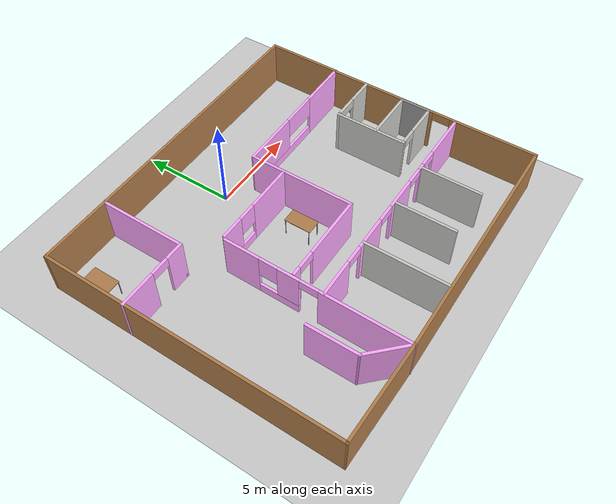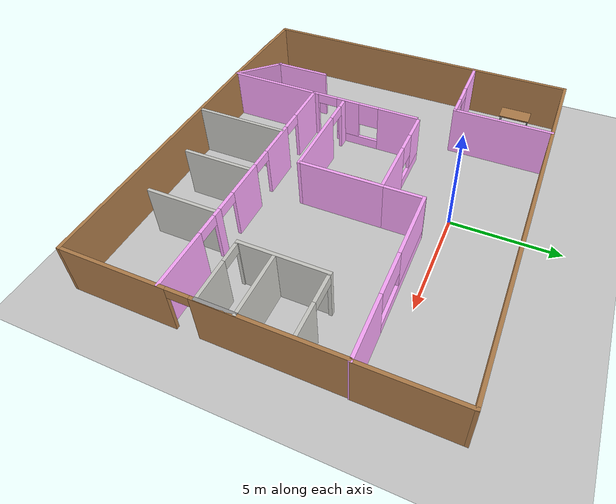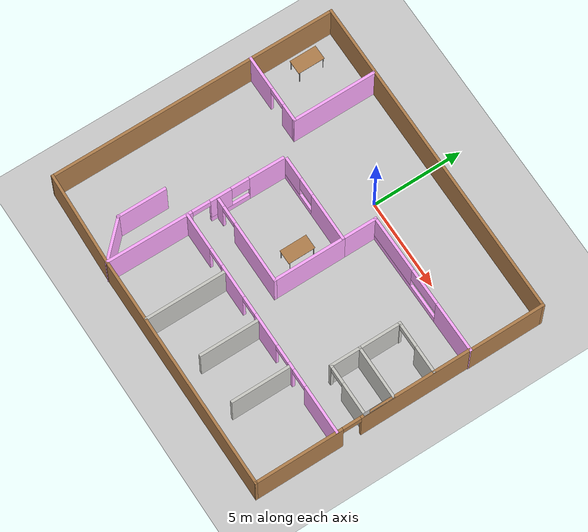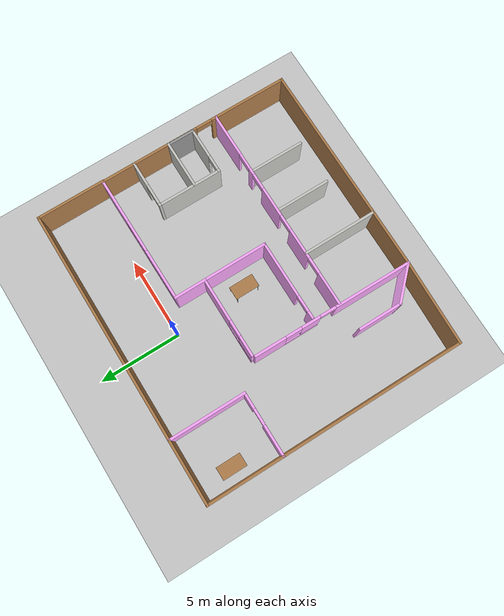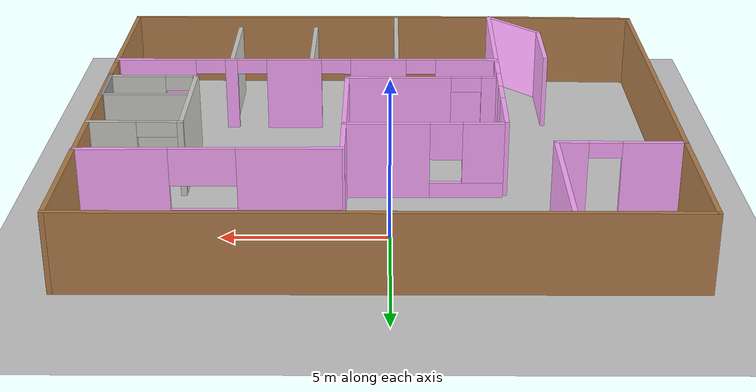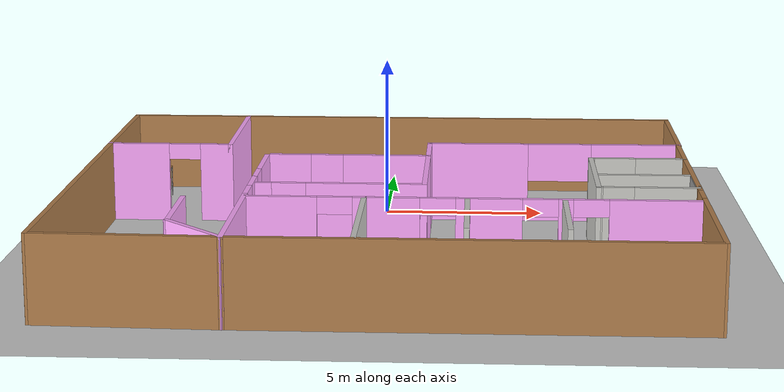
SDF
<sdf version="1.6">
 <world name="default">
  <model name="ground_plane">
   <static>1</static>
   <link name="link">
    <collision name="collision">
     <geometry><plane><normal>0 0 1</normal><size>100 100</size></plane></geometry>
     <surface>
      <contact><collide_bitmask>65535</collide_bitmask></contact>
      <friction><ode><mu>100</mu><mu2>50</mu2></ode></friction>
     </surface>
    </collision>
    <visual name="visual">
     <cast_shadows>0</cast_shadows>
     <geometry><plane><normal>0 0 1</normal><size>100 100</size></plane></geometry>
     <material>
      <script><uri>file://media/materials/scripts/gazebo.material</uri><name>Gazebo/Grey</name></script>
     </material>
    </visual>
   </link>
  </model>
  <model name="Building">
   <pose>0.26771 -4.76126 0 0 -0 0</pose>
   <link name="Wall_0">
    <pose>-3.89491 -3.07088 0 0 0 -1.57824</pose>
    <visual name="Wall_0_Visual_0">
     <pose>-3.9947 0 1.25 0 -0 0</pose>
     <geometry><box><size>1.99092 0.15 2.5</size></box></geometry>
     <material>
      <script><uri>file://media/materials/scripts/gazebo.material</uri><name>Gazebo/Grey</name></script>
      <ambient>1 0.666667 1 1</ambient>
     </material>
     <meta><layer>0</layer></meta>
    </visual>
    <collision name="Wall_0_Collision_0">
     <geometry><box><size>1.99092 0.15 2.5</size></box></geometry>
     <pose>-3.9947 0 1.25 0 -0 0</pose>
    </collision>
    <visual name="Wall_0_Visual_1">
     <pose>2.58886 0 1.25 0 -0 0</pose>
     <geometry><box><size>4.80261 0.15 2.5</size></box></geometry>
     <material>
      <script><uri>file://media/materials/scripts/gazebo.material</uri><name>Gazebo/Grey</name></script>
      <ambient>1 0.666667 1 1</ambient>
     </material>
     <meta><layer>0</layer></meta>
    </visual>
    <collision name="Wall_0_Collision_1">
     <geometry><box><size>4.80261 0.15 2.5</size></box></geometry>
     <pose>2.58886 0 1.25 0 -0 0</pose>
    </collision>
    <visual name="Wall_0_Visual_2">
     <pose>-1.90584 0 0.25 0 -0 0</pose>
     <geometry><box><size>2.18679 0.15 0.5</size></box></geometry>
     <material>
      <script><uri>file://media/materials/scripts/gazebo.material</uri><name>Gazebo/Grey</name></script>
      <ambient>1 0.666667 1 1</ambient>
     </material>
     <meta><layer>0</layer></meta>
    </visual>
    <collision name="Wall_0_Collision_2">
     <geometry><box><size>2.18679 0.15 0.5</size></box></geometry>
     <pose>-1.90584 0 0.25 0 -0 0</pose>
    </collision>
    <visual name="Wall_0_Visual_3">
     <pose>-1.40584 0 1.5 0 -0 0</pose>
     <geometry><box><size>1.18679 0.15 2</size></box></geometry>
     <material>
      <script><uri>file://media/materials/scripts/gazebo.material</uri><name>Gazebo/Grey</name></script>
      <ambient>1 0.666667 1 1</ambient>
     </material>
     <meta><layer>0</layer></meta>
    </visual>
    <collision name="Wall_0_Collision_3">
     <geometry><box><size>1.18679 0.15 2</size></box></geometry>
     <pose>-1.40584 0 1.5 0 -0 0</pose>
    </collision>
    <visual name="Wall_0_Visual_4">
     <pose>-2.49924 0 1.9 0 -0 0</pose>
     <geometry><box><size>1 0.15 1.2</size></box></geometry>
     <material>
      <script><uri>file://media/materials/scripts/gazebo.material</uri><name>Gazebo/Grey</name></script>
      <ambient>1 0.666667 1 1</ambient>
     </material>
     <meta><layer>0</layer></meta>
    </visual>
    <collision name="Wall_0_Collision_4">
     <geometry><box><size>1 0.15 1.2</size></box></geometry>
     <pose>-2.49924 0 1.9 0 -0 0</pose>
    </collision>
    <visual name="Wall_0_Visual_5">
     <pose>-0.312448 0 2.25 0 -0 0</pose>
     <geometry><box><size>1 0.15 0.5</size></box></geometry>
     <material>
      <script><uri>file://media/materials/scripts/gazebo.material</uri><name>Gazebo/Grey</name></script>
      <ambient>1 0.666667 1 1</ambient>
     </material>
     <meta><layer>0</layer></meta>
    </visual>
    <collision name="Wall_0_Collision_5">
     <geometry><box><size>1 0.15 0.5</size></box></geometry>
     <pose>-0.312448 0 2.25 0 -0 0</pose>
    </collision>
   </link>
   <link name="Wall_1">
    <collision name="Wall_1_Collision">
     <geometry><box><size>13.0918 0.15 2.5</size></box></geometry>
     <pose>0 0 1.25 0 -0 0</pose>
    </collision>
    <visual name="Wall_1_Visual">
     <pose>0 0 1.25 0 -0 0</pose>
     <geometry><box><size>13.0918 0.15 2.5</size></box></geometry>
     <material>
      <script><uri>file://media/materials/scripts/gazebo.material</uri><name>Gazebo/Wood</name></script>
      <ambient>1 1 1 1</ambient>
     </material>
     <meta><layer>0</layer></meta>
    </visual>
    <pose>2.5394 -7.9859 0 0 -0 0</pose>
   </link>
   <link name="Wall_10">
    <pose>2.57243 -3.52127 0 0 -0 0</pose>
    <visual name="Wall_10_Visual_0">
     <pose>-5.45325 0 1.25 0 -0 0</pose>
     <geometry><box><size>2.0935 0.15 2.5</size></box></geometry>
     <material>
      <script><uri>file://media/materials/scripts/gazebo.material</uri><name>Gazebo/Grey</name></script>
      <ambient>1 0.666667 1 1</ambient>
     </material>
     <meta><layer>0</layer></meta>
    </visual>
    <collision name="Wall_10_Collision_0">
     <geometry><box><size>2.0935 0.15 2.5</size></box></geometry>
     <pose>-5.45325 0 1.25 0 -0 0</pose>
    </collision>
    <visual name="Wall_10_Visual_1">
     <pose>-2.45836 0 1.25 0 -0 0</pose>
     <geometry><box><size>1.89627 0.15 2.5</size></box></geometry>
     <material>
      <script><uri>file://media/materials/scripts/gazebo.material</uri><name>Gazebo/Grey</name></script>
      <ambient>1 0.666667 1 1</ambient>
     </material>
     <meta><layer>0</layer></meta>
    </visual>
    <collision name="Wall_10_Collision_1">
     <geometry><box><size>1.89627 0.15 2.5</size></box></geometry>
     <pose>-2.45836 0 1.25 0 -0 0</pose>
    </collision>
    <visual name="Wall_10_Visual_2">
     <pose>0.424691 0 1.25 0 -0 0</pose>
     <geometry><box><size>1.86983 0.15 2.5</size></box></geometry>
     <material>
      <script><uri>file://media/materials/scripts/gazebo.material</uri><name>Gazebo/Grey</name></script>
      <ambient>1 0.666667 1 1</ambient>
     </material>
     <meta><layer>0</layer></meta>
    </visual>
    <collision name="Wall_10_Collision_2">
     <geometry><box><size>1.86983 0.15 2.5</size></box></geometry>
     <pose>0.424691 0 1.25 0 -0 0</pose>
    </collision>
    <visual name="Wall_10_Visual_3">
     <pose>2.56714 0 1.25 0 -0 0</pose>
     <geometry><box><size>0.415075 0.15 2.5</size></box></geometry>
     <material>
      <script><uri>file://media/materials/scripts/gazebo.material</uri><name>Gazebo/Grey</name></script>
      <ambient>1 0.666667 1 1</ambient>
     </material>
     <meta><layer>0</layer></meta>
    </visual>
    <collision name="Wall_10_Collision_3">
     <geometry><box><size>0.415075 0.15 2.5</size></box></geometry>
     <pose>2.56714 0 1.25 0 -0 0</pose>
    </collision>
    <visual name="Wall_10_Visual_4">
     <pose>5.13734 0 1.25 0 -0 0</pose>
     <geometry><box><size>2.72532 0.15 2.5</size></box></geometry>
     <material>
      <script><uri>file://media/materials/scripts/gazebo.material</uri><name>Gazebo/Grey</name></script>
      <ambient>1 0.666667 1 1</ambient>
     </material>
     <meta><layer>0</layer></meta>
    </visual>
    <collision name="Wall_10_Collision_4">
     <geometry><box><size>2.72532 0.15 2.5</size></box></geometry>
     <pose>5.13734 0 1.25 0 -0 0</pose>
    </collision>
    <visual name="Wall_10_Visual_5">
     <pose>-3.9065 0 2.25 0 -0 0</pose>
     <geometry><box><size>1 0.15 0.5</size></box></geometry>
     <material>
      <script><uri>file://media/materials/scripts/gazebo.material</uri><name>Gazebo/Grey</name></script>
      <ambient>1 0.666667 1 1</ambient>
     </material>
     <meta><layer>0</layer></meta>
    </visual>
    <collision name="Wall_10_Collision_5">
     <geometry><box><size>1 0.15 0.5</size></box></geometry>
     <pose>-3.9065 0 2.25 0 -0 0</pose>
    </collision>
    <visual name="Wall_10_Visual_6">
     <pose>-1.01022 0 2.25 0 -0 0</pose>
     <geometry><box><size>1 0.15 0.5</size></box></geometry>
     <material>
      <script><uri>file://media/materials/scripts/gazebo.material</uri><name>Gazebo/Grey</name></script>
      <ambient>1 0.666667 1 1</ambient>
     </material>
     <meta><layer>0</layer></meta>
    </visual>
    <collision name="Wall_10_Collision_6">
     <geometry><box><size>1 0.15 0.5</size></box></geometry>
     <pose>-1.01022 0 2.25 0 -0 0</pose>
    </collision>
    <visual name="Wall_10_Visual_7">
     <pose>1.8596 0 2.25 0 -0 0</pose>
     <geometry><box><size>1 0.15 0.5</size></box></geometry>
     <material>
      <script><uri>file://media/materials/scripts/gazebo.material</uri><name>Gazebo/Grey</name></script>
      <ambient>1 0.666667 1 1</ambient>
     </material>
     <meta><layer>0</layer></meta>
    </visual>
    <collision name="Wall_10_Collision_7">
     <geometry><box><size>1 0.15 0.5</size></box></geometry>
     <pose>1.8596 0 2.25 0 -0 0</pose>
    </collision>
    <visual name="Wall_10_Visual_8">
     <pose>3.27468 0 2.25 0 -0 0</pose>
     <geometry><box><size>1 0.15 0.5</size></box></geometry>
     <material>
      <script><uri>file://media/materials/scripts/gazebo.material</uri><name>Gazebo/Grey</name></script>
      <ambient>1 0.666667 1 1</ambient>
     </material>
     <meta><layer>0</layer></meta>
    </visual>
    <collision name="Wall_10_Collision_8">
     <geometry><box><size>1 0.15 0.5</size></box></geometry>
     <pose>3.27468 0 2.25 0 -0 0</pose>
    </collision>
   </link>
   <link name="Wall_12">
    <pose>7.56891 1.8886 0 0 -0 3.14159</pose>
    <visual name="Wall_12_Visual_0">
     <pose>-0.720538 0 1.25 0 -0 0</pose>
     <geometry><box><size>1.55892 0.15 2.5</size></box></geometry>
     <material>
      <script><uri>file://media/materials/scripts/gazebo.material</uri><name>Gazebo/CeilingTiled</name></script>
      <ambient>0.666667 0.666667 1 1</ambient>
     </material>
     <meta><layer>0</layer></meta>
    </visual>
    <collision name="Wall_12_Collision_0">
     <geometry><box><size>1.55892 0.15 2.5</size></box></geometry>
     <pose>-0.720538 0 1.25 0 -0 0</pose>
    </collision>
    <visual name="Wall_12_Visual_1">
     <pose>1.40446 0 1.25 0 -0 0</pose>
     <geometry><box><size>0.191076 0.15 2.5</size></box></geometry>
     <material>
      <script><uri>file://media/materials/scripts/gazebo.material</uri><name>Gazebo/CeilingTiled</name></script>
      <ambient>0.666667 0.666667 1 1</ambient>
     </material>
     <meta><layer>0</layer></meta>
    </visual>
    <collision name="Wall_12_Collision_1">
     <geometry><box><size>0.191076 0.15 2.5</size></box></geometry>
     <pose>1.40446 0 1.25 0 -0 0</pose>
    </collision>
    <visual name="Wall_12_Visual_2">
     <pose>0.683924 0 2.25 0 -0 0</pose>
     <geometry><box><size>1.25 0.15 0.5</size></box></geometry>
     <material>
      <script><uri>file://media/materials/scripts/gazebo.material</uri><name>Gazebo/CeilingTiled</name></script>
      <ambient>0.666667 0.666667 1 1</ambient>
     </material>
     <meta><layer>0</layer></meta>
    </visual>
    <collision name="Wall_12_Collision_2">
     <geometry><box><size>1.25 0.15 0.5</size></box></geometry>
     <pose>0.683924 0 2.25 0 -0 0</pose>
    </collision>
   </link>
   <link name="Wall_15">
    <collision name="Wall_15_Collision">
     <geometry><box><size>4 0.15 2.5</size></box></geometry>
     <pose>0 0 1.25 0 -0 0</pose>
    </collision>
    <visual name="Wall_15_Visual">
     <pose>0 0 1.25 0 -0 0</pose>
     <geometry><box><size>4 0.15 2.5</size></box></geometry>
     <material>
      <script><uri>file://media/materials/scripts/gazebo.material</uri><name>Gazebo/CeilingTiled</name></script>
      <ambient>0.666667 0.666667 1 1</ambient>
     </material>
     <meta><layer>0</layer></meta>
    </visual>
    <pose>6.14391 -0.036403 0 0 0 -1.5708</pose>
   </link>
   <link name="Wall_16">
    <pose>7.56891 -1.9614 0 0 -0 0</pose>
    <visual name="Wall_16_Visual_0">
     <pose>-1.40292 0 1.25 0 -0 0</pose>
     <geometry><box><size>0.194152 0.15 2.5</size></box></geometry>
     <material>
      <script><uri>file://media/materials/scripts/gazebo.material</uri><name>Gazebo/CeilingTiled</name></script>
      <ambient>0.666667 0.666667 1 1</ambient>
     </material>
     <meta><layer>0</layer></meta>
    </visual>
    <collision name="Wall_16_Collision_0">
     <geometry><box><size>0.194152 0.15 2.5</size></box></geometry>
     <pose>-1.40292 0 1.25 0 -0 0</pose>
    </collision>
    <visual name="Wall_16_Visual_1">
     <pose>0.547076 0 1.25 0 -0 0</pose>
     <geometry><box><size>1.90585 0.15 2.5</size></box></geometry>
     <material>
      <script><uri>file://media/materials/scripts/gazebo.material</uri><name>Gazebo/CeilingTiled</name></script>
      <ambient>0.666667 0.666667 1 1</ambient>
     </material>
     <meta><layer>0</layer></meta>
    </visual>
    <collision name="Wall_16_Collision_1">
     <geometry><box><size>1.90585 0.15 2.5</size></box></geometry>
     <pose>0.547076 0 1.25 0 -0 0</pose>
    </collision>
    <visual name="Wall_16_Visual_2">
     <pose>-0.855848 0 2.25 0 -0 0</pose>
     <geometry><box><size>0.9 0.15 0.5</size></box></geometry>
     <material>
      <script><uri>file://media/materials/scripts/gazebo.material</uri><name>Gazebo/CeilingTiled</name></script>
      <ambient>0.666667 0.666667 1 1</ambient>
     </material>
     <meta><layer>0</layer></meta>
    </visual>
    <collision name="Wall_16_Collision_2">
     <geometry><box><size>0.9 0.15 0.5</size></box></geometry>
     <pose>-0.855848 0 2.25 0 -0 0</pose>
    </collision>
   </link>
   <link name="Wall_17">
    <collision name="Wall_17_Collision">
     <geometry><box><size>1.75 0.15 2.5</size></box></geometry>
     <pose>0 0 1.25 0 -0 0</pose>
    </collision>
    <visual name="Wall_17_Visual">
     <pose>0 0 1.25 0 -0 0</pose>
     <geometry><box><size>1.75 0.15 2.5</size></box></geometry>
     <material>
      <script><uri>file://media/materials/scripts/gazebo.material</uri><name>Gazebo/Grey</name></script>
      <ambient>1 1 1 1</ambient>
     </material>
     <meta><layer>0</layer></meta>
    </visual>
    <pose>8.99391 -1.1614 0 0 -0 1.5708</pose>
   </link>
   <link name="Wall_18">
    <collision name="Wall_18_Collision">
     <geometry><box><size>3 0.15 2.5</size></box></geometry>
     <pose>0 0 1.25 0 -0 0</pose>
    </collision>
    <visual name="Wall_18_Visual">
     <pose>0 0 1.25 0 -0 0</pose>
     <geometry><box><size>3 0.15 2.5</size></box></geometry>
     <material>
      <script><uri>file://media/materials/scripts/gazebo.material</uri><name>Gazebo/CeilingTiled</name></script>
      <ambient>0.666667 0.666667 1 1</ambient>
     </material>
     <meta><layer>0</layer></meta>
    </visual>
    <pose>7.56891 -0.361403 0 0 -0 3.14159</pose>
   </link>
   <link name="Wall_2">
    <pose>9.01627 -2.06506 0 0 -0 1.56978</pose>
    <visual name="Wall_2_Visual_0">
     <pose>-3.568 0 1.25 0 -0 0</pose>
     <geometry><box><size>4.85569 0.15 2.5</size></box></geometry>
     <material>
      <script><uri>file://media/materials/scripts/gazebo.material</uri><name>Gazebo/Wood</name></script>
      <ambient>1 1 1 1</ambient>
     </material>
     <meta><layer>0</layer></meta>
    </visual>
    <collision name="Wall_2_Collision_0">
     <geometry><box><size>4.85569 0.15 2.5</size></box></geometry>
     <pose>-3.568 0 1.25 0 -0 0</pose>
    </collision>
    <visual name="Wall_2_Visual_1">
     <pose>2.92785 0 1.25 0 -0 0</pose>
     <geometry><box><size>6.136 0.15 2.5</size></box></geometry>
     <material>
      <script><uri>file://media/materials/scripts/gazebo.material</uri><name>Gazebo/Wood</name></script>
      <ambient>1 1 1 1</ambient>
     </material>
     <meta><layer>0</layer></meta>
    </visual>
    <collision name="Wall_2_Collision_1">
     <geometry><box><size>6.136 0.15 2.5</size></box></geometry>
     <pose>2.92785 0 1.25 0 -0 0</pose>
    </collision>
    <visual name="Wall_2_Visual_2">
     <pose>-0.640156 0 2.25 0 -0 0</pose>
     <geometry><box><size>1 0.15 0.5</size></box></geometry>
     <material>
      <script><uri>file://media/materials/scripts/gazebo.material</uri><name>Gazebo/Wood</name></script>
      <ambient>1 1 1 1</ambient>
     </material>
     <meta><layer>0</layer></meta>
    </visual>
    <collision name="Wall_2_Collision_2">
     <geometry><box><size>1 0.15 0.5</size></box></geometry>
     <pose>-0.640156 0 2.25 0 -0 0</pose>
    </collision>
   </link>
   <link name="Wall_21">
    <collision name="Wall_21_Collision">
     <geometry><box><size>4.5 0.15 2.5</size></box></geometry>
     <pose>0 0 1.25 0 -0 0</pose>
    </collision>
    <visual name="Wall_21_Visual">
     <pose>0 0 1.25 0 -0 0</pose>
     <geometry><box><size>4.5 0.15 2.5</size></box></geometry>
     <material>
      <script><uri>file://media/materials/scripts/gazebo.material</uri><name>Gazebo/CeilingTiled</name></script>
      <ambient>1 0.666667 1 1</ambient>
     </material>
     <meta><layer>0</layer></meta>
    </visual>
    <pose>-0.507784 -5.74646 0 0 0 -1.5708</pose>
   </link>
   <link name="Wall_23">
    <collision name="Wall_23_Collision">
     <geometry><box><size>3.25 0.15 2.5</size></box></geometry>
     <pose>0 0 1.25 0 -0 0</pose>
    </collision>
    <visual name="Wall_23_Visual">
     <pose>0 0 1.25 0 -0 0</pose>
     <geometry><box><size>3.25 0.15 2.5</size></box></geometry>
     <material>
      <script><uri>file://media/materials/scripts/gazebo.material</uri><name>Gazebo/CeilingTiled</name></script>
      <ambient>1 0.666667 1 1</ambient>
     </material>
     <meta><layer>0</layer></meta>
    </visual>
    <pose>2.39271 -5.21989 0 0 0 -1.5708</pose>
   </link>
   <link name="Wall_25">
    <collision name="Wall_25_Collision">
     <geometry><box><size>3.25 0.15 2.5</size></box></geometry>
     <pose>0 0 1.25 0 -0 0</pose>
    </collision>
    <visual name="Wall_25_Visual">
     <pose>0 0 1.25 0 -0 0</pose>
     <geometry><box><size>3.25 0.15 2.5</size></box></geometry>
     <material>
      <script><uri>file://media/materials/scripts/gazebo.material</uri><name>Gazebo/CeilingTiled</name></script>
      <ambient>1 0.666667 1 1</ambient>
     </material>
     <meta><layer>0</layer></meta>
    </visual>
    <pose>5.11344 -5.21592 0 0 0 -1.5708</pose>
   </link>
   <link name="Wall_27">
    <collision name="Wall_27_Collision">
     <geometry><box><size>4.25 0.15 2.5</size></box></geometry>
     <pose>0 0 1.25 0 -0 0</pose>
    </collision>
    <visual name="Wall_27_Visual">
     <pose>0 0 1.25 0 -0 0</pose>
     <geometry><box><size>4.25 0.15 2.5</size></box></geometry>
     <material>
      <script><uri>file://media/materials/scripts/gazebo.material</uri><name>Gazebo/Wood</name></script>
      <ambient>1 1 1 1</ambient>
     </material>
     <meta><layer>0</layer></meta>
    </visual>
    <pose>9.05284 5.96697 0 0 -0 1.5708</pose>
   </link>
   <link name="Wall_28">
    <collision name="Wall_28_Collision">
     <geometry><box><size>18.25 0.15 2.5</size></box></geometry>
     <pose>0 0 1.25 0 -0 0</pose>
    </collision>
    <visual name="Wall_28_Visual">
     <pose>0 0 1.25 0 -0 0</pose>
     <geometry><box><size>18.25 0.15 2.5</size></box></geometry>
     <material>
      <script><uri>file://media/materials/scripts/gazebo.material</uri><name>Gazebo/Wood</name></script>
      <ambient>1 1 1 1</ambient>
     </material>
     <meta><layer>0</layer></meta>
    </visual>
    <pose>0.002842 8.01697 0 0 -0 3.14159</pose>
   </link>
   <link name="Wall_3">
    <pose>5.09725 3.88056 0 0 0 -3.13239</pose>
    <visual name="Wall_3_Visual_0">
     <pose>-2.60316 0 1.25 0 -0 0</pose>
     <geometry><box><size>2.85486 0.15 2.5</size></box></geometry>
     <material>
      <script><uri>file://media/materials/scripts/gazebo.material</uri><name>Gazebo/Grey</name></script>
      <ambient>1 0.666667 1 1</ambient>
     </material>
     <meta><layer>0</layer></meta>
    </visual>
    <collision name="Wall_3_Collision_0">
     <geometry><box><size>2.85486 0.15 2.5</size></box></geometry>
     <pose>-2.60316 0 1.25 0 -0 0</pose>
    </collision>
    <visual name="Wall_3_Visual_1">
     <pose>1.42743 0 0.25 0 -0 0</pose>
     <geometry><box><size>5.20633 0.15 0.5</size></box></geometry>
     <material>
      <script><uri>file://media/materials/scripts/gazebo.material</uri><name>Gazebo/Grey</name></script>
      <ambient>1 0.666667 1 1</ambient>
     </material>
     <meta><layer>0</layer></meta>
    </visual>
    <collision name="Wall_3_Collision_1">
     <geometry><box><size>5.20633 0.15 0.5</size></box></geometry>
     <pose>1.42743 0 0.25 0 -0 0</pose>
    </collision>
    <visual name="Wall_3_Visual_2">
     <pose>2.42743 0 1.5 0 -0 0</pose>
     <geometry><box><size>3.20633 0.15 2</size></box></geometry>
     <material>
      <script><uri>file://media/materials/scripts/gazebo.material</uri><name>Gazebo/Grey</name></script>
      <ambient>1 0.666667 1 1</ambient>
     </material>
     <meta><layer>0</layer></meta>
    </visual>
    <collision name="Wall_3_Collision_2">
     <geometry><box><size>3.20633 0.15 2</size></box></geometry>
     <pose>2.42743 0 1.5 0 -0 0</pose>
    </collision>
    <visual name="Wall_3_Visual_3">
     <pose>-0.175731 0 1.9 0 -0 0</pose>
     <geometry><box><size>2 0.15 1.2</size></box></geometry>
     <material>
      <script><uri>file://media/materials/scripts/gazebo.material</uri><name>Gazebo/Grey</name></script>
      <ambient>1 0.666667 1 1</ambient>
     </material>
     <meta><layer>0</layer></meta>
    </visual>
    <collision name="Wall_3_Collision_3">
     <geometry><box><size>2 0.15 1.2</size></box></geometry>
     <pose>-0.175731 0 1.9 0 -0 0</pose>
    </collision>
   </link>
   <link name="Wall_32">
    <collision name="Wall_32_Collision">
     <geometry><box><size>16 0.15 2.5</size></box></geometry>
     <pose>0 0 1.25 0 -0 0</pose>
    </collision>
    <visual name="Wall_32_Visual">
     <pose>0 0 1.25 0 -0 0</pose>
     <geometry><box><size>16 0.15 2.5</size></box></geometry>
     <material>
      <script><uri>file://media/materials/scripts/gazebo.material</uri><name>Gazebo/Wood</name></script>
      <ambient>1 1 1 1</ambient>
     </material>
     <meta><layer>0</layer></meta>
    </visual>
    <pose>-9.04716 0.091965 0 0 0 -1.5708</pose>
   </link>
   <link name="Wall_33">
    <collision name="Wall_33_Collision">
     <geometry><box><size>5.26795 0.15 2.5</size></box></geometry>
     <pose>0 0 1.25 0 -0 0</pose>
    </collision>
    <visual name="Wall_33_Visual">
     <pose>0 0 1.25 0 -0 0</pose>
     <geometry><box><size>5.26795 0.15 2.5</size></box></geometry>
     <material>
      <script><uri>file://media/materials/scripts/gazebo.material</uri><name>Gazebo/Wood</name></script>
      <ambient>1 1 1 1</ambient>
     </material>
     <meta><layer>0</layer></meta>
    </visual>
    <pose>-6.48932 -7.90947 0 0 0 -0.029873</pose>
   </link>
   <link name="Wall_34">
    <collision name="Wall_34_Collision">
     <geometry><box><size>2.5 0.15 2.5</size></box></geometry>
     <pose>0 0 1.25 0 -0 0</pose>
    </collision>
    <visual name="Wall_34_Visual">
     <pose>0 0 1.25 0 -0 0</pose>
     <geometry><box><size>2.5 0.15 2.5</size></box></geometry>
     <material>
      <script><uri>file://media/materials/scripts/gazebo.material</uri><name>Gazebo/Grey</name></script>
      <ambient>1 0.666667 1 1</ambient>
     </material>
     <meta><layer>0</layer></meta>
    </visual>
    <pose>-4.76234 -7.15505 0 0 -0 2.35619</pose>
   </link>
   <link name="Wall_35">
    <collision name="Wall_35_Collision">
     <geometry><box><size>2.75 0.15 2.5</size></box></geometry>
     <pose>0 0 1.25 0 -0 0</pose>
    </collision>
    <visual name="Wall_35_Visual">
     <pose>0 0 1.25 0 -0 0</pose>
     <geometry><box><size>2.75 0.15 2.5</size></box></geometry>
     <material>
      <script><uri>file://media/materials/scripts/gazebo.material</uri><name>Gazebo/Grey</name></script>
      <ambient>1 0.666667 1 1</ambient>
     </material>
     <meta><layer>0</layer></meta>
    </visual>
    <pose>-5.59319 -5.0242 0 0 -0 1.5708</pose>
   </link>
   <link name="Wall_37">
    <pose>-7.12837 3.3843 0 0 -0 0</pose>
    <visual name="Wall_37_Visual_0">
     <pose>-1.01948 0 1.25 0 -0 0</pose>
     <geometry><box><size>1.96104 0.15 2.5</size></box></geometry>
     <material>
      <script><uri>file://media/materials/scripts/gazebo.material</uri><name>Gazebo/Grey</name></script>
      <ambient>1 0.666667 1 1</ambient>
     </material>
     <meta><layer>0</layer></meta>
    </visual>
    <collision name="Wall_37_Collision_0">
     <geometry><box><size>1.96104 0.15 2.5</size></box></geometry>
     <pose>-1.01948 0 1.25 0 -0 0</pose>
    </collision>
    <visual name="Wall_37_Visual_1">
     <pose>1.48052 0 1.25 0 -0 0</pose>
     <geometry><box><size>1.03896 0.15 2.5</size></box></geometry>
     <material>
      <script><uri>file://media/materials/scripts/gazebo.material</uri><name>Gazebo/Grey</name></script>
      <ambient>1 0.666667 1 1</ambient>
     </material>
     <meta><layer>0</layer></meta>
    </visual>
    <collision name="Wall_37_Collision_1">
     <geometry><box><size>1.03896 0.15 2.5</size></box></geometry>
     <pose>1.48052 0 1.25 0 -0 0</pose>
    </collision>
    <visual name="Wall_37_Visual_2">
     <pose>0.461038 0 2.25 0 -0 0</pose>
     <geometry><box><size>1 0.15 0.5</size></box></geometry>
     <material>
      <script><uri>file://media/materials/scripts/gazebo.material</uri><name>Gazebo/Grey</name></script>
      <ambient>1 0.666667 1 1</ambient>
     </material>
     <meta><layer>0</layer></meta>
    </visual>
    <collision name="Wall_37_Collision_2">
     <geometry><box><size>1 0.15 0.5</size></box></geometry>
     <pose>0.461038 0 2.25 0 -0 0</pose>
    </collision>
   </link>
   <link name="Wall_38">
    <collision name="Wall_38_Collision">
     <geometry><box><size>4.75 0.15 2.5</size></box></geometry>
     <pose>0 0 1.25 0 -0 0</pose>
    </collision>
    <visual name="Wall_38_Visual">
     <pose>0 0 1.25 0 -0 0</pose>
     <geometry><box><size>4.75 0.15 2.5</size></box></geometry>
     <material>
      <script><uri>file://media/materials/scripts/gazebo.material</uri><name>Gazebo/Grey</name></script>
      <ambient>1 0.666667 1 1</ambient>
     </material>
     <meta><layer>0</layer></meta>
    </visual>
    <pose>-5.20337 5.6843 0 0 -0 1.5708</pose>
   </link>
   <link name="Wall_4">
    <collision name="Wall_4_Collision">
     <geometry><box><size>2 0.15 2.5</size></box></geometry>
     <pose>0 0 1.25 0 -0 0</pose>
    </collision>
    <visual name="Wall_4_Visual">
     <pose>0 0 1.25 0 -0 0</pose>
     <geometry><box><size>2 0.15 2.5</size></box></geometry>
     <material>
      <script><uri>file://media/materials/scripts/gazebo.material</uri><name>Gazebo/Grey</name></script>
      <ambient>1 0.666667 1 1</ambient>
     </material>
     <meta><layer>0</layer></meta>
    </visual>
    <pose>1.14166 2.91915 0 0 0 -1.5708</pose>
   </link>
   <link name="Wall_5">
    <pose>-1.28334 1.99415 0 0 -0 3.14159</pose>
    <visual name="Wall_5_Visual_0">
     <pose>-1.1425 0 1.25 0 -0 0</pose>
     <geometry><box><size>2.715 0.15 2.5</size></box></geometry>
     <material>
      <script><uri>file://media/materials/scripts/gazebo.material</uri><name>Gazebo/Grey</name></script>
      <ambient>1 0.666667 1 1</ambient>
     </material>
     <meta><layer>0</layer></meta>
    </visual>
    <collision name="Wall_5_Collision_0">
     <geometry><box><size>2.715 0.15 2.5</size></box></geometry>
     <pose>-1.1425 0 1.25 0 -0 0</pose>
    </collision>
    <visual name="Wall_5_Visual_1">
     <pose>1.3575 0 0.25 0 -0 0</pose>
     <geometry><box><size>2.285 0.15 0.5</size></box></geometry>
     <material>
      <script><uri>file://media/materials/scripts/gazebo.material</uri><name>Gazebo/Grey</name></script>
      <ambient>1 0.666667 1 1</ambient>
     </material>
     <meta><layer>0</layer></meta>
    </visual>
    <collision name="Wall_5_Collision_1">
     <geometry><box><size>2.285 0.15 0.5</size></box></geometry>
     <pose>1.3575 0 0.25 0 -0 0</pose>
    </collision>
    <visual name="Wall_5_Visual_2">
     <pose>1.8575 0 1.5 0 -0 0</pose>
     <geometry><box><size>1.285 0.15 2</size></box></geometry>
     <material>
      <script><uri>file://media/materials/scripts/gazebo.material</uri><name>Gazebo/Grey</name></script>
      <ambient>1 0.666667 1 1</ambient>
     </material>
     <meta><layer>0</layer></meta>
    </visual>
    <collision name="Wall_5_Collision_2">
     <geometry><box><size>1.285 0.15 2</size></box></geometry>
     <pose>1.8575 0 1.5 0 -0 0</pose>
    </collision>
    <visual name="Wall_5_Visual_3">
     <pose>0.715001 0 1.9 0 -0 0</pose>
     <geometry><box><size>1 0.15 1.2</size></box></geometry>
     <material>
      <script><uri>file://media/materials/scripts/gazebo.material</uri><name>Gazebo/Grey</name></script>
      <ambient>1 0.666667 1 1</ambient>
     </material>
     <meta><layer>0</layer></meta>
    </visual>
    <collision name="Wall_5_Collision_3">
     <geometry><box><size>1 0.15 1.2</size></box></geometry>
     <pose>0.715001 0 1.9 0 -0 0</pose>
    </collision>
   </link>
   <link name="Wall_7">
    <collision name="Wall_7_Collision">
     <geometry><box><size>4 0.15 2.5</size></box></geometry>
     <pose>0 0 1.25 0 -0 0</pose>
    </collision>
    <visual name="Wall_7_Visual">
     <pose>0 0 1.25 0 -0 0</pose>
     <geometry><box><size>4 0.15 2.5</size></box></geometry>
     <material>
      <script><uri>file://media/materials/scripts/gazebo.material</uri><name>Gazebo/Grey</name></script>
      <ambient>1 0.666667 1 1</ambient>
     </material>
     <meta><layer>0</layer></meta>
    </visual>
    <pose>1.14166 0.069149 0 0 0 -1.5708</pose>
   </link>
   <link name="Wall_8">
    <pose>-1.28334 -1.85585 0 0 -0 3.14159</pose>
    <visual name="Wall_8_Visual_0">
     <pose>-0.743815 0 1.25 0 -0 0</pose>
     <geometry><box><size>3.51237 0.15 2.5</size></box></geometry>
     <material>
      <script><uri>file://media/materials/scripts/gazebo.material</uri><name>Gazebo/Grey</name></script>
      <ambient>1 0.666667 1 1</ambient>
     </material>
     <meta><layer>0</layer></meta>
    </visual>
    <collision name="Wall_8_Collision_0">
     <geometry><box><size>3.51237 0.15 2.5</size></box></geometry>
     <pose>-0.743815 0 1.25 0 -0 0</pose>
    </collision>
    <visual name="Wall_8_Visual_1">
     <pose>2.25618 0 1.25 0 -0 0</pose>
     <geometry><box><size>0.48763 0.15 2.5</size></box></geometry>
     <material>
      <script><uri>file://media/materials/scripts/gazebo.material</uri><name>Gazebo/Grey</name></script>
      <ambient>1 0.666667 1 1</ambient>
     </material>
     <meta><layer>0</layer></meta>
    </visual>
    <collision name="Wall_8_Collision_1">
     <geometry><box><size>0.48763 0.15 2.5</size></box></geometry>
     <pose>2.25618 0 1.25 0 -0 0</pose>
    </collision>
    <visual name="Wall_8_Visual_2">
     <pose>1.51237 0 2.25 0 -0 0</pose>
     <geometry><box><size>1 0.15 0.5</size></box></geometry>
     <material>
      <script><uri>file://media/materials/scripts/gazebo.material</uri><name>Gazebo/Grey</name></script>
      <ambient>1 0.666667 1 1</ambient>
     </material>
     <meta><layer>0</layer></meta>
    </visual>
    <collision name="Wall_8_Collision_2">
     <geometry><box><size>1 0.15 0.5</size></box></geometry>
     <pose>1.51237 0 2.25 0 -0 0</pose>
    </collision>
   </link>
   <static>1</static>
  </model>
  <model name="table_clone_1">
   <static>1</static>
   <link name="link">
    <collision name="surface">
     <pose>0 0 1 0 -0 0</pose>
     <geometry><box><size>1.5 0.8 0.03</size></box></geometry>
     <surface><friction><ode><mu>0.6</mu><mu2>0.6</mu2></ode></friction></surface>
    </collision>
    <visual name="visual1">
     <pose>0 0 1 0 -0 0</pose>
     <geometry><box><size>1.5 0.8 0.03</size></box></geometry>
     <material>
      <script><uri>file://media/materials/scripts/gazebo.material</uri><name>Gazebo/Wood</name></script>
     </material>
    </visual>
    <collision name="front_left_leg">
     <pose>0.68 0.38 0.5 0 -0 0</pose>
     <geometry><cylinder><radius>0.02</radius><length>1</length></cylinder></geometry>
    </collision>
    <visual name="front_left_leg">
     <pose>0.68 0.38 0.5 0 -0 0</pose>
     <geometry><cylinder><radius>0.02</radius><length>1</length></cylinder></geometry>
     <material>
      <script><uri>file://media/materials/scripts/gazebo.material</uri><name>Gazebo/Grey</name></script>
     </material>
    </visual>
    <collision name="front_right_leg">
     <pose>0.68 -0.38 0.5 0 -0 0</pose>
     <geometry><cylinder><radius>0.02</radius><length>1</length></cylinder></geometry>
    </collision>
    <visual name="front_right_leg">
     <pose>0.68 -0.38 0.5 0 -0 0</pose>
     <geometry><cylinder><radius>0.02</radius><length>1</length></cylinder></geometry>
     <material>
      <script><uri>file://media/materials/scripts/gazebo.material</uri><name>Gazebo/Grey</name></script>
     </material>
    </visual>
    <collision name="back_right_leg">
     <pose>-0.68 -0.38 0.5 0 -0 0</pose>
     <geometry><cylinder><radius>0.02</radius><length>1</length></cylinder></geometry>
    </collision>
    <visual name="back_right_leg">
     <pose>-0.68 -0.38 0.5 0 -0 0</pose>
     <geometry><cylinder><radius>0.02</radius><length>1</length></cylinder></geometry>
     <material>
      <script><uri>file://media/materials/scripts/gazebo.material</uri><name>Gazebo/Grey</name></script>
     </material>
    </visual>
    <collision name="back_left_leg">
     <pose>-0.68 0.38 0.5 0 -0 0</pose>
     <geometry><cylinder><radius>0.02</radius><length>1</length></cylinder></geometry>
    </collision>
    <visual name="back_left_leg">
     <pose>-0.68 0.38 0.5 0 -0 0</pose>
     <geometry><cylinder><radius>0.02</radius><length>1</length></cylinder></geometry>
     <material>
      <script><uri>file://media/materials/scripts/gazebo.material</uri><name>Gazebo/Grey</name></script>
     </material>
    </visual>
   </link>
   <pose>-7.79434 1.22101 0 0 0 -1.56675</pose>
  </model>
  <model name="table_clone_2">
   <static>1</static>
   <link name="link">
    <collision name="surface">
     <pose>0 0 1 0 -0 0</pose>
     <geometry><box><size>1.5 0.8 0.03</size></box></geometry>
     <surface><friction><ode><mu>0.6</mu><mu2>0.6</mu2></ode></friction></surface>
    </collision>
    <visual name="visual1">
     <pose>0 0 1 0 -0 0</pose>
     <geometry><box><size>1.5 0.8 0.03</size></box></geometry>
     <material>
      <script><uri>file://media/materials/scripts/gazebo.material</uri><name>Gazebo/Wood</name></script>
     </material>
    </visual>
    <collision name="front_left_leg">
     <pose>0.68 0.38 0.5 0 -0 0</pose>
     <geometry><cylinder><radius>0.02</radius><length>1</length></cylinder></geometry>
    </collision>
    <visual name="front_left_leg">
     <pose>0.68 0.38 0.5 0 -0 0</pose>
     <geometry><cylinder><radius>0.02</radius><length>1</length></cylinder></geometry>
     <material>
      <script><uri>file://media/materials/scripts/gazebo.material</uri><name>Gazebo/Grey</name></script>
     </material>
    </visual>
    <collision name="front_right_leg">
     <pose>0.68 -0.38 0.5 0 -0 0</pose>
     <geometry><cylinder><radius>0.02</radius><length>1</length></cylinder></geometry>
    </collision>
    <visual name="front_right_leg">
     <pose>0.68 -0.38 0.5 0 -0 0</pose>
     <geometry><cylinder><radius>0.02</radius><length>1</length></cylinder></geometry>
     <material>
      <script><uri>file://media/materials/scripts/gazebo.material</uri><name>Gazebo/Grey</name></script>
     </material>
    </visual>
    <collision name="back_right_leg">
     <pose>-0.68 -0.38 0.5 0 -0 0</pose>
     <geometry><cylinder><radius>0.02</radius><length>1</length></cylinder></geometry>
    </collision>
    <visual name="back_right_leg">
     <pose>-0.68 -0.38 0.5 0 -0 0</pose>
     <geometry><cylinder><radius>0.02</radius><length>1</length></cylinder></geometry>
     <material>
      <script><uri>file://media/materials/scripts/gazebo.material</uri><name>Gazebo/Grey</name></script>
     </material>
    </visual>
    <collision name="back_left_leg">
     <pose>-0.68 0.38 0.5 0 -0 0</pose>
     <geometry><cylinder><radius>0.02</radius><length>1</length></cylinder></geometry>
    </collision>
    <visual name="back_left_leg">
     <pose>-0.68 0.38 0.5 0 -0 0</pose>
     <geometry><cylinder><radius>0.02</radius><length>1</length></cylinder></geometry>
     <material>
      <script><uri>file://media/materials/scripts/gazebo.material</uri><name>Gazebo/Grey</name></script>
     </material>
    </visual>
   </link>
   <pose>0.232117 -4.56584 0 0 0 -1.56675</pose>
  </model>
 </world>
</sdf>
